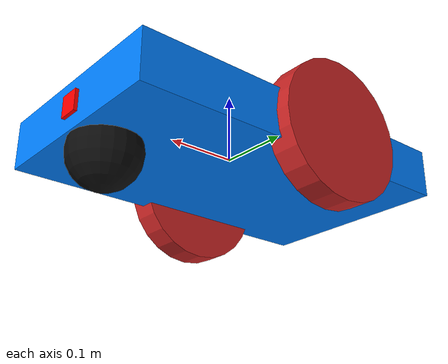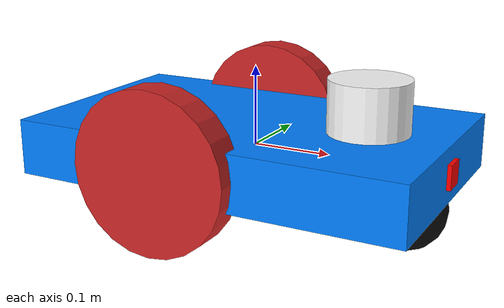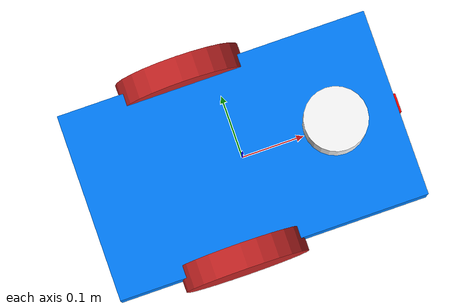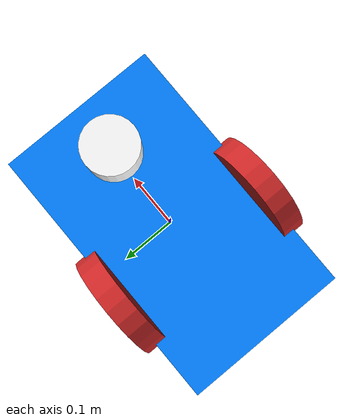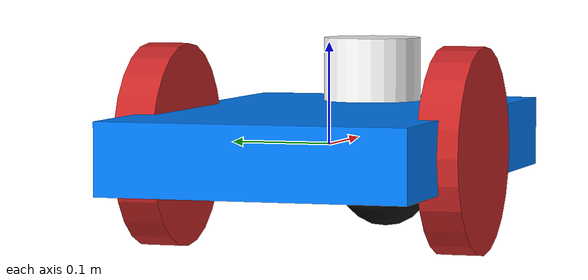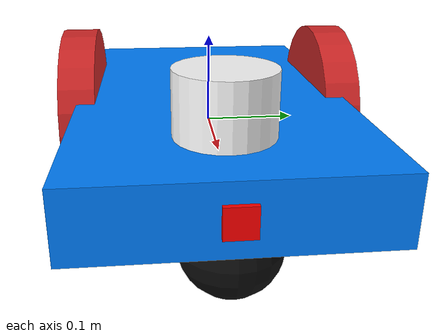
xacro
<?xml version="1.0" ?>
    <robot name="group7bot" xmlns:xacro="http://www.ros.org/wiki/xacro">

    <xacro:include filename="$(find com760cw2_group7)/urdf/group7bot.gazebo" />
    <!-- Create a robot chassis as Base Link -->
    <link name="base_link">
        <visual>
            <origin rpy="0 0 0" xyz="0 0 0"/>
            <geometry>
                <box size="0.5 0.3 0.07"/>
            </geometry>
            <material name="blue">
                <color rgba="0.0 0.5 1.0 1.0"/>
            </material>
        </visual>
        <!-- Base pose, collision and inertial -->
        <pose>0 0 0.1 0 0 0</pose>
        <collision>
            <geometry>
                <box size="0.5 0.3 0.07"/>
            </geometry>
        </collision>
        <inertial>
        <mass value="5"/>
        <origin rpy="0 0 0" xyz="0 0 0.1"/>
        <inertia ixx="0.03954" ixy="0" ixz="0" iyy="0.10621" iyz="0" izz="0.10621"/>
        </inertial>
        <!-- caster -->
        <visual name="caster">
            <origin rpy=" 0 0 0" xyz="0.2 0 -0.05"/>
            <geometry>
                <sphere radius="0.05"/>
            </geometry>
            <material name="black">
                <color rgba="0.05 0.05 0.05 1.0"/>
            </material>
        </visual>
        <!-- Caster collision and inertial -->
        <collision>
            <origin xyz="0.35 0 -0.05" rpy="0 0 0" />
            <geometry>
                <sphere radius="0.05" />
            </geometry>
        </collision>
        <inertial>
            <mass value="0.5"/>
            <inertia ixx="0.0005" ixy="0.0" ixz="0.0" iyy="0.0005" iyz="0.0" izz="0.0005"/>
        </inertial>
    </link>
    <!-- Create wheel right -->
    <link name="right_wheel">
        <visual>
            <origin rpy="0 1.5707 1.5707" xyz="0 0 0"/>
            <geometry>
                <cylinder length="0.04" radius="0.1"/>
            </geometry>
        </visual>
        <!--right wheel collision and inertial-->
        <collision>
            <origin rpy="0 1.5707 1.5707" xyz="0 0 0" />
            <geometry>
                <cylinder length="0.04" radius="0.1"/>
            </geometry>
        </collision>
        <inertial>
            <mass value="0.2"/>
            <origin rpy="0 1.5707 1.5707" xyz="0 0 0"/>
            <inertia ixx="0.00053" ixy="0" ixz="0" iyy="0.00053" iyz="0" izz="0.001"/>
        </inertial>
    </link>
    <!-- Create wheel left -->
    <link name="left_wheel">
        <visual>
            <origin rpy="0 1.5707 1.5707" xyz="0 0 0"/>
            <geometry>
                <cylinder length="0.04" radius="0.1"/>
            </geometry>
        </visual>
        <!--left wheel collision and inertial-->
        <collision>
            <origin rpy="0 1.5707 1.5707" xyz="0 0 0" />
            <geometry>
                <cylinder length="0.04" radius="0.1"/>
            </geometry>
        </collision>
        <inertial>
            <mass value="0.2"/>
            <origin rpy="0 1.5707 1.5707" xyz="0 0 0"/>
            <inertia ixx="0.00053" ixy="0" ixz="0" iyy="0.00053" iyz="0" izz="0.001"/>
        </inertial>
    </link>

    <link name="camera_link">
        <visual>
            <geometry>
                <box size="0.010 0.03 0.03"/>
            </geometry>
            <material name="red">
                <color rgba="1 0 0 1"/>
            </material>
        </visual>
    </link>

    <link name="camera_link_optical"></link>

    <link name="laser_sensor">
        <visual>
            <origin xyz="0 0 0" rpy="0 0 0"/>
            <geometry>
                <cylinder radius="0.05" length="0.1"/>
            </geometry>
            <material name="white">
                <color rgba="1.0 1.0 1.0 1.0"/>
            </material>
        </visual>

        <collision>
            <origin xyz="0 0 0" rpy="0 0 0"/>
            <geometry>
                <cylinder raduis="0.05" length="0.1"/>
            </geometry>
        </collision>

        <inertial>
            <origin xyz="0 0 0" rpy="0 0 0"/>
            <mass value="1"/>
            <inertia ixx="0.0015" ixy="0" ixz="0" iyy="0.0015" iyz="0" izz="0.0012"/>
        </inertial>
    </link>
    <!-- Joint for right wheel -->
    <joint name="joint_right_wheel" type="continuous">
        <origin rpy="0 0 0" xyz="-0.05 0.15 0"/>
        <child link="right_wheel"/>
        <parent link="base_link"/>
        <axis rpy="0 0 0" xyz="0 1 0"/>
        <limit effort="10000" velocity="1000"/>
        <dynamics damping="1.0" friction="1.0" />
    </joint>
    <!-- Joint for left wheel -->
    <joint name="joint_left_wheel" type="continuous">
        <origin rpy="0 0 0" xyz="-0.05 -0.15 0"/>
        <child link="left_wheel"/>
        <parent link="base_link"/>
        <axis rpy="0 0 0" xyz="0 1 0"/>
        <limit effort="10000" velocity="1000"/>
        <dynamics damping="1.0" friction="1.0" />
    </joint>

    <joint name="camera_joint" type="fixed">
        <parent link="base_link"/>
        <child link="camera_link"/>
        <origin xyz="0.25 0 0" rpy="0 0 0"/>
    </joint>

    <joint name="camera_optical_joint" type="fixed">
        <parent link="camera_link"/>
        <child link="camera_link_optical"/>
        <origin xyz="0 0 0" rpy="-1.57 0 1.57"/>
    </joint>

    <joint name="joint_laser_sensor" type="fixed">
         <origin rpy="0 0 0" xyz="0.15 0 0.05"/>
         <parent link="base_link"/>
         <child link="laser_sensor"/>
    </joint>

</robot>
